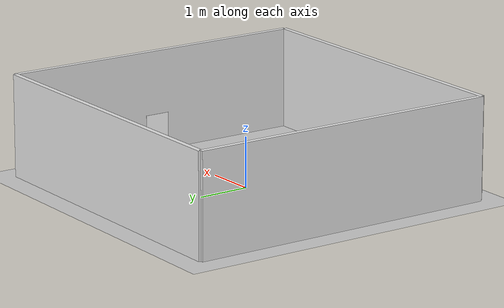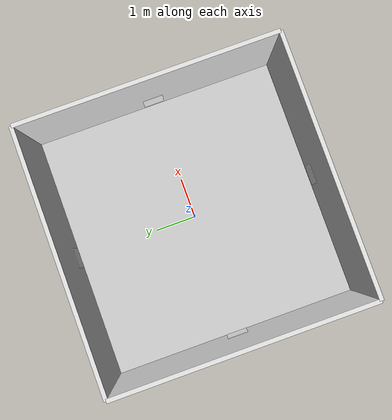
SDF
<?xml version="1.0"?>
<sdf version="1.6">
  <world name="apriltag_room">

    <include><uri>model://sun</uri></include>
    <include><uri>model://ground_plane</uri></include>

    <scene>
      <ambient>0.6 0.6 0.6 1</ambient>
      <background>0.8 0.8 0.8 1</background>
    </scene>

    <!-- Ground-truth model states for accuracy analysis. -->
    <plugin name="gazebo_ros_state" filename="libgazebo_ros_state.so">
      <ros>
        <namespace>/gazebo</namespace>
      </ros>
      <update_rate>50.0</update_rate>
    </plugin>

    <!-- Room walls. Light-coloured so the tags keep a clean quiet zone. -->
    <model name="walls">
      <static>true</static>
      <link name="link">
        <visual name="wall_px">
          <pose>3.1 0 1.0 0 0 0</pose>
          <geometry><box><size>0.1 6.2 2.0</size></box></geometry>
          <material><ambient>0.9 0.9 0.9 1</ambient><diffuse>0.9 0.9 0.9 1</diffuse></material>
        </visual>
        <collision name="wall_px_c">
          <pose>3.1 0 1.0 0 0 0</pose>
          <geometry><box><size>0.1 6.2 2.0</size></box></geometry>
        </collision>
        <visual name="wall_nx">
          <pose>-3.1 0 1.0 0 0 0</pose>
          <geometry><box><size>0.1 6.2 2.0</size></box></geometry>
          <material><ambient>0.9 0.9 0.9 1</ambient><diffuse>0.9 0.9 0.9 1</diffuse></material>
        </visual>
        <collision name="wall_nx_c">
          <pose>-3.1 0 1.0 0 0 0</pose>
          <geometry><box><size>0.1 6.2 2.0</size></box></geometry>
        </collision>
        <visual name="wall_py">
          <pose>0 3.1 1.0 0 0 0</pose>
          <geometry><box><size>6.2 0.1 2.0</size></box></geometry>
          <material><ambient>0.9 0.9 0.9 1</ambient><diffuse>0.9 0.9 0.9 1</diffuse></material>
        </visual>
        <collision name="wall_py_c">
          <pose>0 3.1 1.0 0 0 0</pose>
          <geometry><box><size>6.2 0.1 2.0</size></box></geometry>
        </collision>
        <visual name="wall_ny">
          <pose>0 -3.1 1.0 0 0 0</pose>
          <geometry><box><size>6.2 0.1 2.0</size></box></geometry>
          <material><ambient>0.9 0.9 0.9 1</ambient><diffuse>0.9 0.9 0.9 1</diffuse></material>
        </visual>
        <collision name="wall_ny_c">
          <pose>0 -3.1 1.0 0 0 0</pose>
          <geometry><box><size>6.2 0.1 2.0</size></box></geometry>
        </collision>
      </link>
    </model>

    <!-- Tags. Poses match config/tags.yaml so the estimator ground truth holds. -->
    <include>
      <name>apriltag_0</name>
      <uri>model://apriltag_0</uri>
      <pose>3.0 0 0.5 1.570796 0 -1.570796</pose>
    </include>
    <include>
      <name>apriltag_1</name>
      <uri>model://apriltag_1</uri>
      <pose>-3.0 0 0.5 1.570796 0 1.570796</pose>
    </include>
    <include>
      <name>apriltag_2</name>
      <uri>model://apriltag_2</uri>
      <pose>0 3.0 0.5 1.570796 0 0</pose>
    </include>
    <include>
      <name>apriltag_3</name>
      <uri>model://apriltag_3</uri>
      <pose>0 -3.0 0.5 1.570796 0 3.141593</pose>
    </include>

  </world>
</sdf>

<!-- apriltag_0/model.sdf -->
<sdf version="1.9">
  <model name="apriltag_0">
    <static>true</static>
    <link name="link">
      <visual name="visual">
        <geometry>
          <box>
            <size>0.5 0.5 0.01</size>
          </box>
        </geometry>
        <material>
          <diffuse>1 1 1 1</diffuse>
          <specular>0 0 0 1</specular>
          <pbr>
            <metal>
              <albedo_map>materials/textures/tag16_05_00000_512.png</albedo_map>
              <metalness>0.0</metalness>
              <roughness>0.2</roughness>
            </metal>
          </pbr>
        </material>
      </visual>
      <collision name="collision">
        <geometry>
          <box>
            <size>0.5 0.5 0.01</size>
          </box>
        </geometry>
      </collision>
    </link>
  </model>
</sdf>

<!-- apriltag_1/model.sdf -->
<sdf version="1.9">
  <model name="apriltag_1">
    <static>true</static>
    <link name="link">
      <visual name="visual">
        <geometry>
          <box>
            <size>0.5 0.5 0.01</size>
          </box>
        </geometry>
        <material>
          <diffuse>1 1 1 1</diffuse>
          <specular>0 0 0 1</specular>
          <pbr>
            <metal>
              <albedo_map>materials/textures/tag16_05_00001_512.png</albedo_map>
              <metalness>0.0</metalness>
              <roughness>0.2</roughness>
            </metal>
          </pbr>
        </material>
      </visual>
      <collision name="collision">
        <geometry>
          <box>
            <size>0.5 0.5 0.01</size>
          </box>
        </geometry>
      </collision>
    </link>
  </model>
</sdf>

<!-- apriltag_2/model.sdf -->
<sdf version="1.9">
  <model name="apriltag_2">
    <static>true</static>
    <link name="link">
      <visual name="visual">
        <geometry>
          <box>
            <size>0.5 0.5 0.01</size>
          </box>
        </geometry>
        <material>
          <diffuse>1 1 1 1</diffuse>
          <specular>0 0 0 1</specular>
          <pbr>
            <metal>
              <albedo_map>materials/textures/tag16_05_00002_512.png</albedo_map>
              <metalness>0.0</metalness>
              <roughness>0.2</roughness>
            </metal>
          </pbr>
        </material>
      </visual>
      <collision name="collision">
        <geometry>
          <box>
            <size>0.5 0.5 0.01</size>
          </box>
        </geometry>
      </collision>
    </link>
  </model>
</sdf>

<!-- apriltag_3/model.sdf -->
<sdf version="1.9">
  <model name="apriltag_3">
    <static>true</static>
    <link name="link">
      <visual name="visual">
        <geometry>
          <box>
            <size>0.5 0.5 0.01</size>
          </box>
        </geometry>
        <material>
          <diffuse>1 1 1 1</diffuse>
          <specular>0 0 0 1</specular>
          <pbr>
            <metal>
              <albedo_map>materials/textures/tag16_05_00003_512.png</albedo_map>
              <metalness>0.0</metalness>
              <roughness>0.2</roughness>
            </metal>
          </pbr>
        </material>
      </visual>
      <collision name="collision">
        <geometry>
          <box>
            <size>0.5 0.5 0.01</size>
          </box>
        </geometry>
      </collision>
    </link>
  </model>
</sdf>
